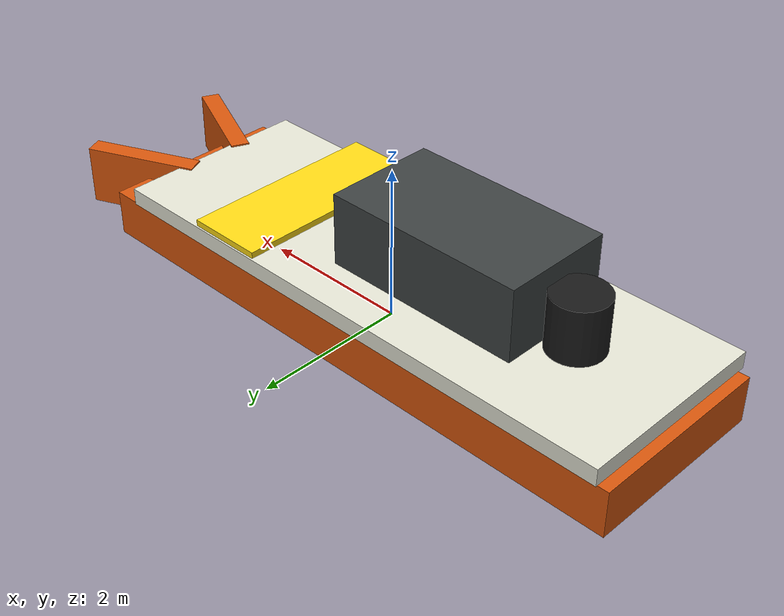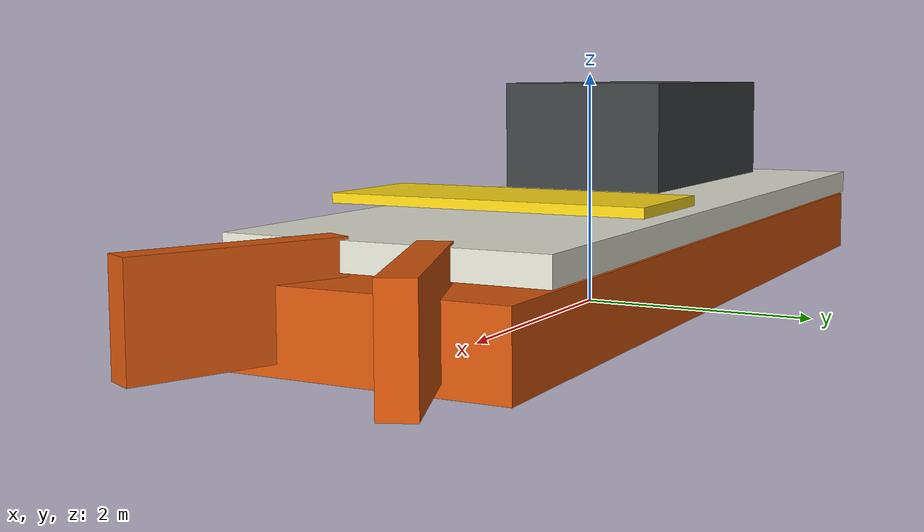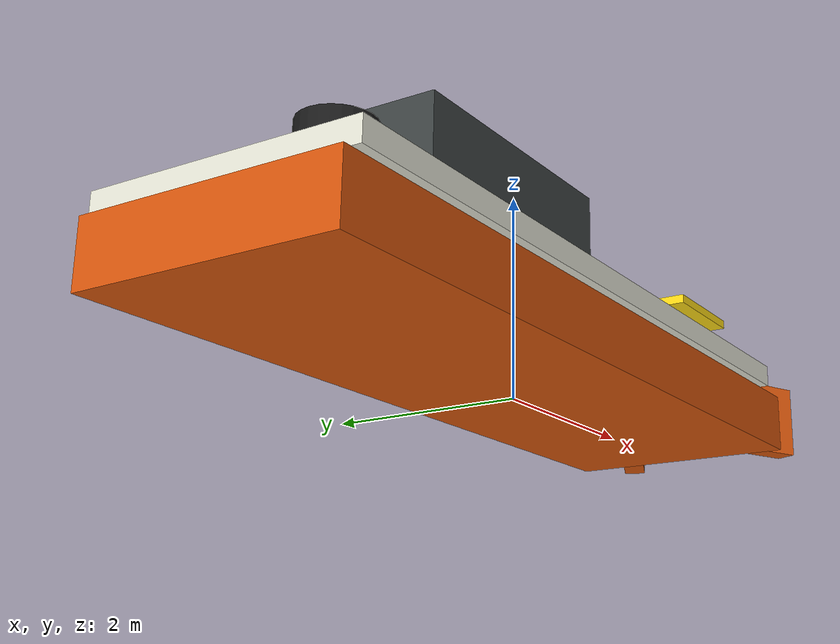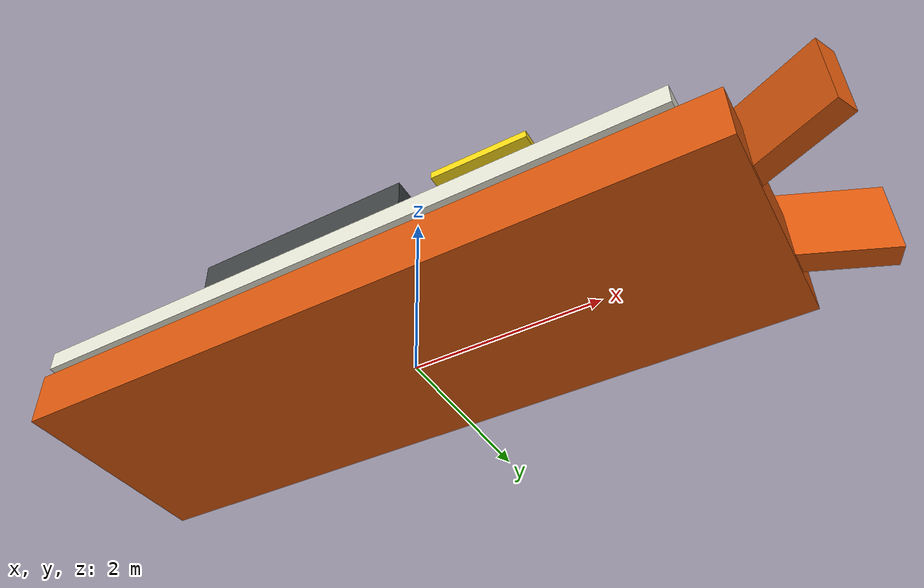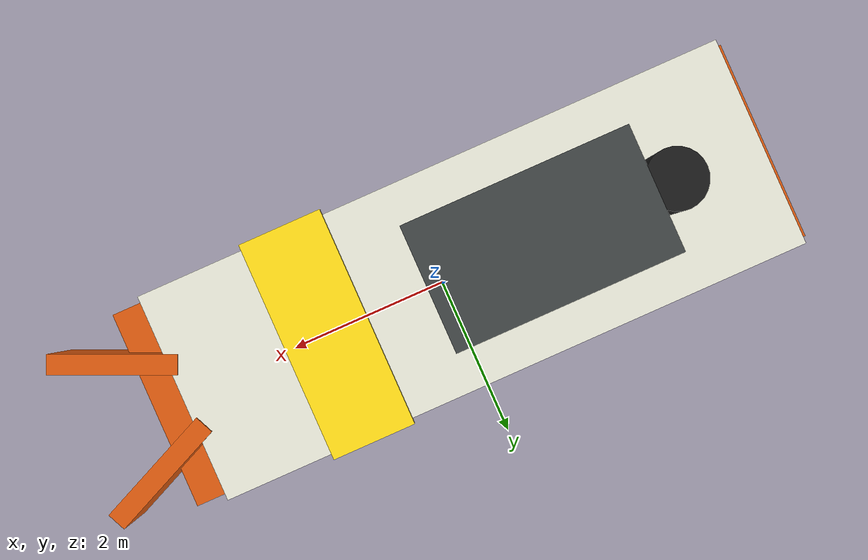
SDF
<?xml version="1.0"?>
<sdf version="1.8">
  <model name="fleet_boat_orange">
    <pose>0 0 0.58 0 0 0</pose>
    <link name="hull">
      <inertial>
        <mass>250</mass>
        <inertia>
          <ixx>170</ixx>
          <iyy>590</iyy>
          <izz>690</izz>
        </inertia>
      </inertial>
      <collision name="hull_collision">
        <pose>0 0 0 0 0 0</pose>
        <geometry>
          <box>
            <size>8.0 2.8 0.95</size>
          </box>
        </geometry>
      </collision>
      <visual name="lower_hull">
        <pose>-0.2 0 -0.22 0 0 0</pose>
        <geometry>
          <box>
            <size>7.8 2.45 0.6</size>
          </box>
        </geometry>
        <material>
          <ambient>0.4 0.12 0.02 1</ambient>
          <diffuse>0.85 0.34 0.05 1</diffuse>
          <specular>0.2 0.18 0.13 1</specular>
        </material>
      </visual>
      <visual name="deck">
        <pose>-0.35 0 0.22 0 0 0</pose>
        <geometry>
          <box>
            <size>7.25 2.55 0.22</size>
          </box>
        </geometry>
        <material>
          <ambient>0.78 0.78 0.72 1</ambient>
          <diffuse>0.9 0.9 0.84 1</diffuse>
        </material>
      </visual>
      <visual name="bow_left">
        <pose>3.85 0.68 -0.04 0 0 0.42</pose>
        <geometry>
          <box>
            <size>1.5 0.24 0.78</size>
          </box>
        </geometry>
        <material>
          <ambient>0.4 0.12 0.02 1</ambient>
          <diffuse>0.85 0.34 0.05 1</diffuse>
        </material>
      </visual>
      <visual name="bow_right">
        <pose>3.85 -0.68 -0.04 0 0 -0.42</pose>
        <geometry>
          <box>
            <size>1.5 0.24 0.78</size>
          </box>
        </geometry>
        <material>
          <ambient>0.4 0.12 0.02 1</ambient>
          <diffuse>0.85 0.34 0.05 1</diffuse>
        </material>
      </visual>
      <visual name="low_cabin">
        <pose>-1.1 0 0.88 0 0 0</pose>
        <geometry>
          <box>
            <size>2.6 1.45 0.92</size>
          </box>
        </geometry>
        <material>
          <ambient>0.16 0.18 0.18 1</ambient>
          <diffuse>0.24 0.26 0.26 1</diffuse>
        </material>
      </visual>
      <visual name="aft_equipment">
        <pose>-2.7 0 0.75 0 0 0</pose>
        <geometry>
          <cylinder>
            <radius>0.35</radius>
            <length>0.7</length>
          </cylinder>
        </geometry>
        <material>
          <ambient>0.06 0.06 0.06 1</ambient>
          <diffuse>0.1 0.1 0.1 1</diffuse>
        </material>
      </visual>
      <visual name="id_band">
        <pose>1.45 0 0.45 0 0 0</pose>
        <geometry>
          <box>
            <size>1.0 2.65 0.08</size>
          </box>
        </geometry>
        <material>
          <ambient>1.0 0.8 0.05 1</ambient>
          <diffuse>1.0 0.86 0.08 1</diffuse>
        </material>
      </visual>
    </link>
    <plugin
      filename="libBoatWaveFollower.so"
      name="gz::sim::systems::BoatWaveFollower">
      <mean_z>0.58</mean_z>
      <heave_amplitude>0.075</heave_amplitude>
      <roll_amplitude>0.03</roll_amplitude>
      <pitch_amplitude>0.025</pitch_amplitude>
      <primary_frequency>0.95</primary_frequency>
      <secondary_frequency>1.5</secondary_frequency>
      <wave_number_x>0.28</wave_number_x>
      <wave_number_y>0.21</wave_number_y>
    </plugin>
  </model>
</sdf>
